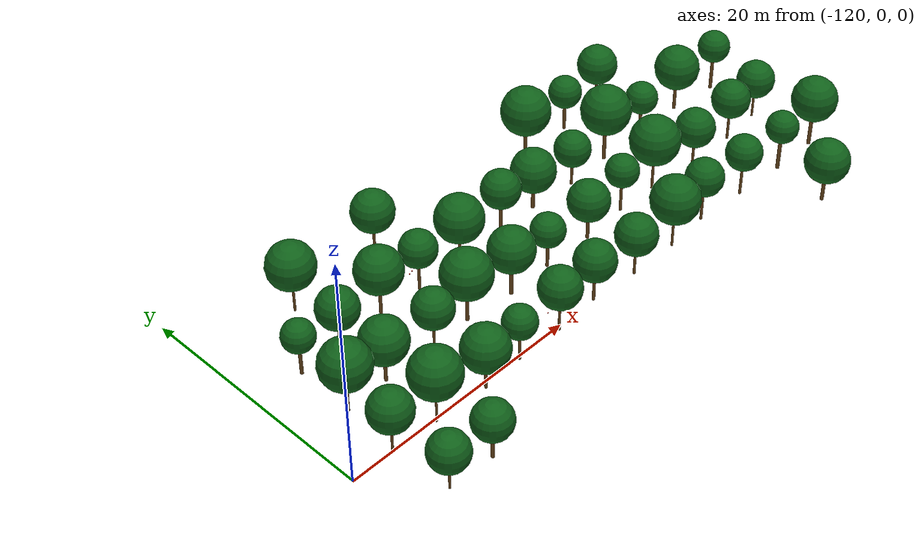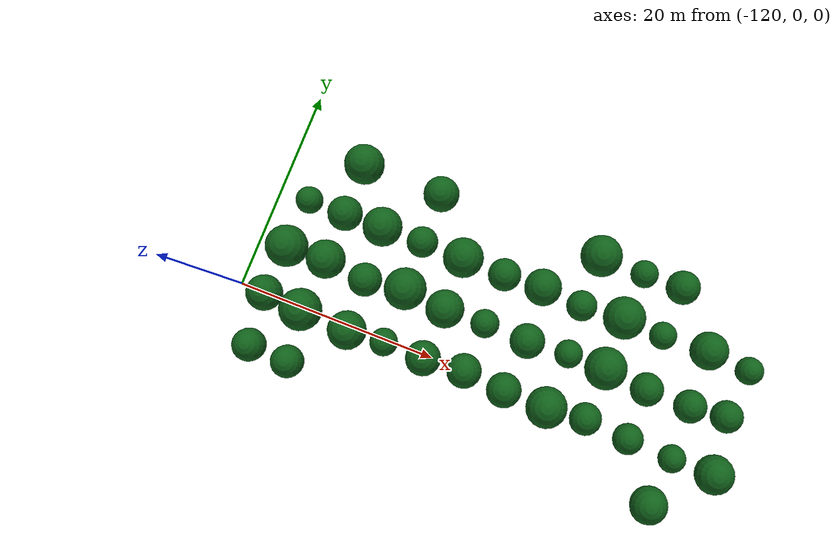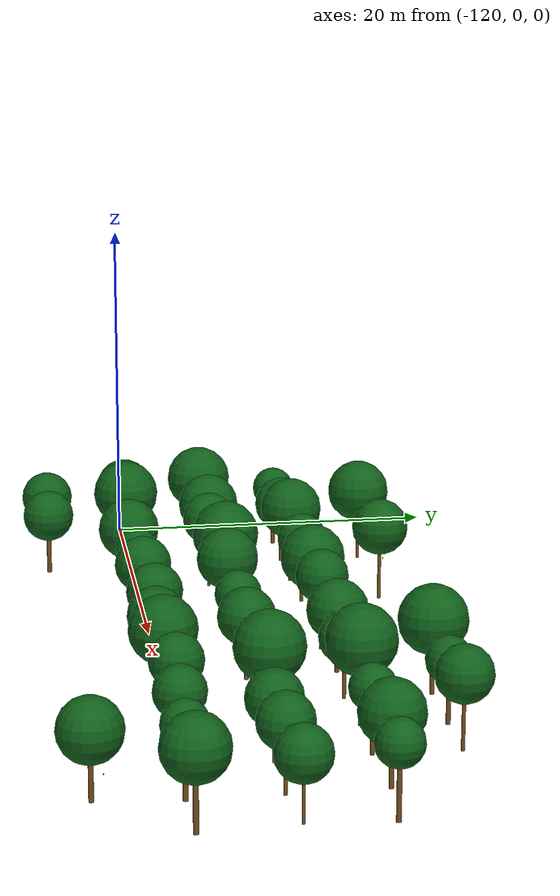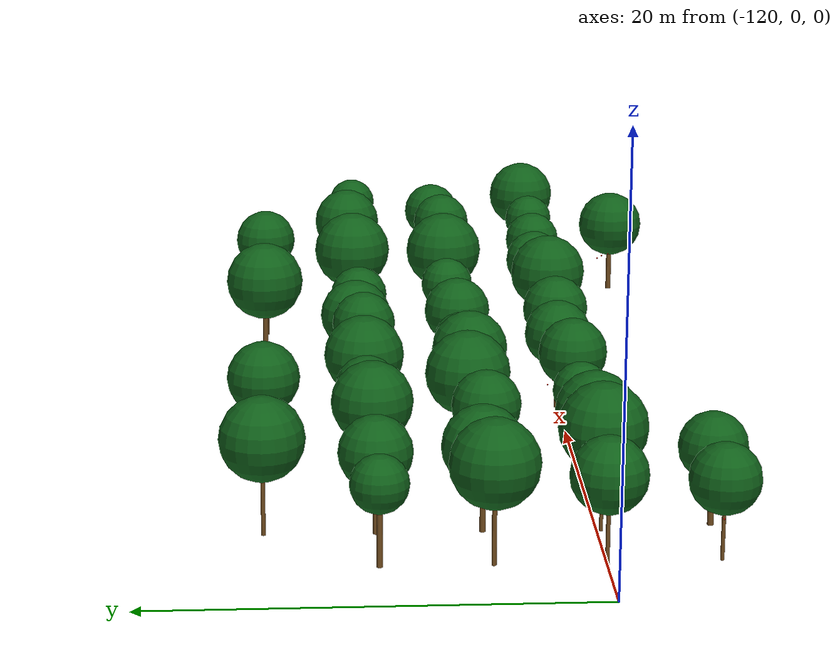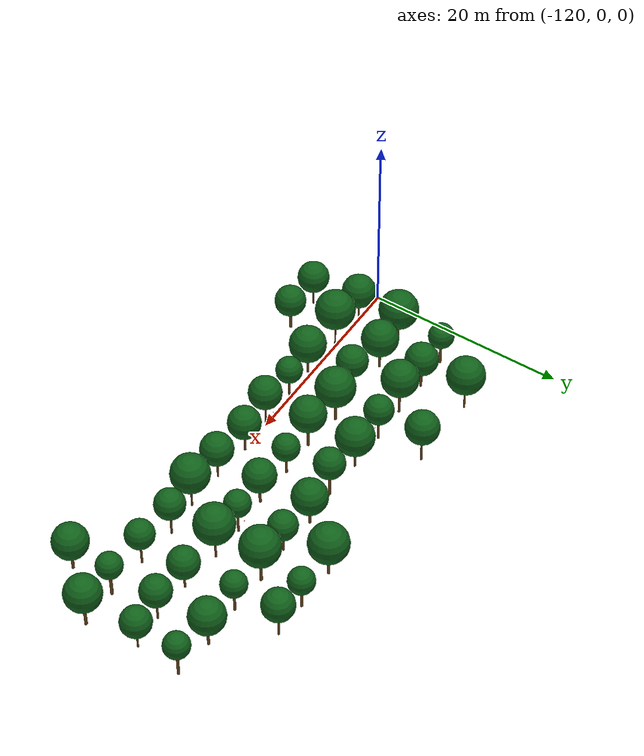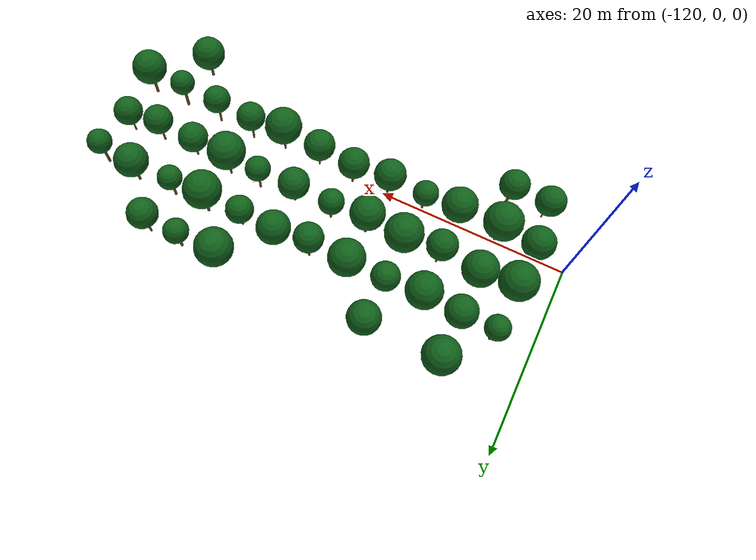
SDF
<sdf version="1.9">
 <world name="cheongsong_orchard">
  <model name="apple_tree_1170">
   <static>true</static>
   <pose>-115.91 -4.96 0 0 0 0</pose>
   <link name="link">
    <collision name="trunk_col">
     <pose>0 0 1.08 0 0 0</pose>
     <geometry><cylinder><radius>0.086</radius><length>2.15</length></cylinder></geometry>
    </collision>
    <visual name="trunk_vis">
     <pose>0 0 1.08 0 0 0</pose>
     <geometry><cylinder><radius>0.086</radius><length>2.15</length></cylinder></geometry>
     <material><ambient>0.35 0.22 0.08 1</ambient><diffuse>0.45 0.30 0.12 1</diffuse></material>
    </visual>
    <collision name="canopy_col">
     <pose>0 0 3.73 0 0 0</pose>
     <geometry><sphere><radius>1.58</radius></sphere></geometry>
    </collision>
    <visual name="canopy_vis">
     <pose>0 0 3.73 0 0 0</pose>
     <geometry><sphere><radius>1.58</radius></sphere></geometry>
     <material><ambient>0.04 0.28 0.06 1</ambient><diffuse>0.06 0.38 0.10 1</diffuse></material>
    </visual>
   </link>
  </model>
  <model name="apple_tree_1171">
   <static>true</static>
   <pose>-112.02 -5.10 0 0 0 0</pose>
   <link name="link">
    <collision name="trunk_col">
     <pose>0 0 1.08 0 0 0</pose>
     <geometry><cylinder><radius>0.143</radius><length>2.15</length></cylinder></geometry>
    </collision>
    <visual name="trunk_vis">
     <pose>0 0 1.08 0 0 0</pose>
     <geometry><cylinder><radius>0.143</radius><length>2.15</length></cylinder></geometry>
     <material><ambient>0.35 0.22 0.08 1</ambient><diffuse>0.45 0.30 0.12 1</diffuse></material>
    </visual>
    <collision name="canopy_col">
     <pose>0 0 3.71 0 0 0</pose>
     <geometry><sphere><radius>1.56</radius></sphere></geometry>
    </collision>
    <visual name="canopy_vis">
     <pose>0 0 3.71 0 0 0</pose>
     <geometry><sphere><radius>1.56</radius></sphere></geometry>
     <material><ambient>0.04 0.28 0.06 1</ambient><diffuse>0.06 0.38 0.10 1</diffuse></material>
    </visual>
   </link>
  </model>
  <model name="apple_tree_1180">
   <static>true</static>
   <pose>-76.38 -5.13 0 0 0 0</pose>
   <link name="link">
    <collision name="trunk_col">
     <pose>0 0 1.04 0 0 0</pose>
     <geometry><cylinder><radius>0.140</radius><length>2.08</length></cylinder></geometry>
    </collision>
    <visual name="trunk_vis">
     <pose>0 0 1.04 0 0 0</pose>
     <geometry><cylinder><radius>0.140</radius><length>2.08</length></cylinder></geometry>
     <material><ambient>0.35 0.22 0.08 1</ambient><diffuse>0.45 0.30 0.12 1</diffuse></material>
    </visual>
    <collision name="canopy_col">
     <pose>0 0 3.86 0 0 0</pose>
     <geometry><sphere><radius>1.77</radius></sphere></geometry>
    </collision>
    <visual name="canopy_vis">
     <pose>0 0 3.86 0 0 0</pose>
     <geometry><sphere><radius>1.77</radius></sphere></geometry>
     <material><ambient>0.04 0.28 0.06 1</ambient><diffuse>0.06 0.38 0.10 1</diffuse></material>
    </visual>
   </link>
  </model>
  <model name="apple_tree_1226">
   <static>true</static>
   <pose>-116.36 0.03 0 0 0 0</pose>
   <link name="link">
    <collision name="trunk_col">
     <pose>0 0 1.23 0 0 0</pose>
     <geometry><cylinder><radius>0.093</radius><length>2.46</length></cylinder></geometry>
    </collision>
    <visual name="trunk_vis">
     <pose>0 0 1.23 0 0 0</pose>
     <geometry><cylinder><radius>0.093</radius><length>2.46</length></cylinder></geometry>
     <material><ambient>0.35 0.22 0.08 1</ambient><diffuse>0.45 0.30 0.12 1</diffuse></material>
    </visual>
    <collision name="canopy_col">
     <pose>0 0 4.16 0 0 0</pose>
     <geometry><sphere><radius>1.70</radius></sphere></geometry>
    </collision>
    <visual name="canopy_vis">
     <pose>0 0 4.16 0 0 0</pose>
     <geometry><sphere><radius>1.70</radius></sphere></geometry>
     <material><ambient>0.04 0.28 0.06 1</ambient><diffuse>0.06 0.38 0.10 1</diffuse></material>
    </visual>
   </link>
  </model>
  <model name="apple_tree_1227">
   <static>true</static>
   <pose>-112.45 -0.19 0 0 0 0</pose>
   <link name="link">
    <collision name="trunk_col">
     <pose>0 0 1.44 0 0 0</pose>
     <geometry><cylinder><radius>0.084</radius><length>2.88</length></cylinder></geometry>
    </collision>
    <visual name="trunk_vis">
     <pose>0 0 1.44 0 0 0</pose>
     <geometry><cylinder><radius>0.084</radius><length>2.88</length></cylinder></geometry>
     <material><ambient>0.35 0.22 0.08 1</ambient><diffuse>0.45 0.30 0.12 1</diffuse></material>
    </visual>
    <collision name="canopy_col">
     <pose>0 0 4.87 0 0 0</pose>
     <geometry><sphere><radius>1.99</radius></sphere></geometry>
    </collision>
    <visual name="canopy_vis">
     <pose>0 0 4.87 0 0 0</pose>
     <geometry><sphere><radius>1.99</radius></sphere></geometry>
     <material><ambient>0.04 0.28 0.06 1</ambient><diffuse>0.06 0.38 0.10 1</diffuse></material>
    </visual>
   </link>
  </model>
  <model name="apple_tree_1228">
   <static>true</static>
   <pose>-107.93 -0.41 0 0 0 0</pose>
   <link name="link">
    <collision name="trunk_col">
     <pose>0 0 1.06 0 0 0</pose>
     <geometry><cylinder><radius>0.118</radius><length>2.12</length></cylinder></geometry>
    </collision>
    <visual name="trunk_vis">
     <pose>0 0 1.06 0 0 0</pose>
     <geometry><cylinder><radius>0.118</radius><length>2.12</length></cylinder></geometry>
     <material><ambient>0.35 0.22 0.08 1</ambient><diffuse>0.45 0.30 0.12 1</diffuse></material>
    </visual>
    <collision name="canopy_col">
     <pose>0 0 3.96 0 0 0</pose>
     <geometry><sphere><radius>1.84</radius></sphere></geometry>
    </collision>
    <visual name="canopy_vis">
     <pose>0 0 3.96 0 0 0</pose>
     <geometry><sphere><radius>1.84</radius></sphere></geometry>
     <material><ambient>0.04 0.28 0.06 1</ambient><diffuse>0.06 0.38 0.10 1</diffuse></material>
    </visual>
   </link>
  </model>
  <model name="apple_tree_1229">
   <static>true</static>
   <pose>-104.37 -0.19 0 0 0 0</pose>
   <link name="link">
    <collision name="trunk_col">
     <pose>0 0 1.18 0 0 0</pose>
     <geometry><cylinder><radius>0.113</radius><length>2.37</length></cylinder></geometry>
    </collision>
    <visual name="trunk_vis">
     <pose>0 0 1.18 0 0 0</pose>
     <geometry><cylinder><radius>0.113</radius><length>2.37</length></cylinder></geometry>
     <material><ambient>0.35 0.22 0.08 1</ambient><diffuse>0.45 0.30 0.12 1</diffuse></material>
    </visual>
    <collision name="canopy_col">
     <pose>0 0 3.70 0 0 0</pose>
     <geometry><sphere><radius>1.33</radius></sphere></geometry>
    </collision>
    <visual name="canopy_vis">
     <pose>0 0 3.70 0 0 0</pose>
     <geometry><sphere><radius>1.33</radius></sphere></geometry>
     <material><ambient>0.04 0.28 0.06 1</ambient><diffuse>0.06 0.38 0.10 1</diffuse></material>
    </visual>
   </link>
  </model>
  <model name="apple_tree_1230">
   <static>true</static>
   <pose>-100.37 -0.24 0 0 0 0</pose>
   <link name="link">
    <collision name="trunk_col">
     <pose>0 0 1.27 0 0 0</pose>
     <geometry><cylinder><radius>0.101</radius><length>2.54</length></cylinder></geometry>
    </collision>
    <visual name="trunk_vis">
     <pose>0 0 1.27 0 0 0</pose>
     <geometry><cylinder><radius>0.101</radius><length>2.54</length></cylinder></geometry>
     <material><ambient>0.35 0.22 0.08 1</ambient><diffuse>0.45 0.30 0.12 1</diffuse></material>
    </visual>
    <collision name="canopy_col">
     <pose>0 0 4.20 0 0 0</pose>
     <geometry><sphere><radius>1.66</radius></sphere></geometry>
    </collision>
    <visual name="canopy_vis">
     <pose>0 0 4.20 0 0 0</pose>
     <geometry><sphere><radius>1.66</radius></sphere></geometry>
     <material><ambient>0.04 0.28 0.06 1</ambient><diffuse>0.06 0.38 0.10 1</diffuse></material>
    </visual>
   </link>
  </model>
  <model name="apple_tree_1231">
   <static>true</static>
   <pose>-96.44 0.05 0 0 0 0</pose>
   <link name="link">
    <collision name="trunk_col">
     <pose>0 0 1.12 0 0 0</pose>
     <geometry><cylinder><radius>0.118</radius><length>2.24</length></cylinder></geometry>
    </collision>
    <visual name="trunk_vis">
     <pose>0 0 1.12 0 0 0</pose>
     <geometry><cylinder><radius>0.118</radius><length>2.24</length></cylinder></geometry>
     <material><ambient>0.35 0.22 0.08 1</ambient><diffuse>0.45 0.30 0.12 1</diffuse></material>
    </visual>
    <collision name="canopy_col">
     <pose>0 0 3.89 0 0 0</pose>
     <geometry><sphere><radius>1.64</radius></sphere></geometry>
    </collision>
    <visual name="canopy_vis">
     <pose>0 0 3.89 0 0 0</pose>
     <geometry><sphere><radius>1.64</radius></sphere></geometry>
     <material><ambient>0.04 0.28 0.06 1</ambient><diffuse>0.06 0.38 0.10 1</diffuse></material>
    </visual>
   </link>
  </model>
  <model name="apple_tree_1232">
   <static>true</static>
   <pose>-92.38 -0.26 0 0 0 0</pose>
   <link name="link">
    <collision name="trunk_col">
     <pose>0 0 1.12 0 0 0</pose>
     <geometry><cylinder><radius>0.100</radius><length>2.25</length></cylinder></geometry>
    </collision>
    <visual name="trunk_vis">
     <pose>0 0 1.12 0 0 0</pose>
     <geometry><cylinder><radius>0.100</radius><length>2.25</length></cylinder></geometry>
     <material><ambient>0.35 0.22 0.08 1</ambient><diffuse>0.45 0.30 0.12 1</diffuse></material>
    </visual>
    <collision name="canopy_col">
     <pose>0 0 3.90 0 0 0</pose>
     <geometry><sphere><radius>1.65</radius></sphere></geometry>
    </collision>
    <visual name="canopy_vis">
     <pose>0 0 3.90 0 0 0</pose>
     <geometry><sphere><radius>1.65</radius></sphere></geometry>
     <material><ambient>0.04 0.28 0.06 1</ambient><diffuse>0.06 0.38 0.10 1</diffuse></material>
    </visual>
   </link>
  </model>
  <model name="apple_tree_1233">
   <static>true</static>
   <pose>-88.20 -0.29 0 0 0 0</pose>
   <link name="link">
    <collision name="trunk_col">
     <pose>0 0 1.32 0 0 0</pose>
     <geometry><cylinder><radius>0.094</radius><length>2.65</length></cylinder></geometry>
    </collision>
    <visual name="trunk_vis">
     <pose>0 0 1.32 0 0 0</pose>
     <geometry><cylinder><radius>0.094</radius><length>2.65</length></cylinder></geometry>
     <material><ambient>0.35 0.22 0.08 1</ambient><diffuse>0.45 0.30 0.12 1</diffuse></material>
    </visual>
    <collision name="canopy_col">
     <pose>0 0 4.58 0 0 0</pose>
     <geometry><sphere><radius>1.93</radius></sphere></geometry>
    </collision>
    <visual name="canopy_vis">
     <pose>0 0 4.58 0 0 0</pose>
     <geometry><sphere><radius>1.93</radius></sphere></geometry>
     <material><ambient>0.04 0.28 0.06 1</ambient><diffuse>0.06 0.38 0.10 1</diffuse></material>
    </visual>
   </link>
  </model>
  <model name="apple_tree_1234">
   <static>true</static>
   <pose>-84.49 0.03 0 0 0 0</pose>
   <link name="link">
    <collision name="trunk_col">
     <pose>0 0 1.33 0 0 0</pose>
     <geometry><cylinder><radius>0.106</radius><length>2.66</length></cylinder></geometry>
    </collision>
    <visual name="trunk_vis">
     <pose>0 0 1.33 0 0 0</pose>
     <geometry><cylinder><radius>0.106</radius><length>2.66</length></cylinder></geometry>
     <material><ambient>0.35 0.22 0.08 1</ambient><diffuse>0.45 0.30 0.12 1</diffuse></material>
    </visual>
    <collision name="canopy_col">
     <pose>0 0 4.19 0 0 0</pose>
     <geometry><sphere><radius>1.52</radius></sphere></geometry>
    </collision>
    <visual name="canopy_vis">
     <pose>0 0 4.19 0 0 0</pose>
     <geometry><sphere><radius>1.52</radius></sphere></geometry>
     <material><ambient>0.04 0.28 0.06 1</ambient><diffuse>0.06 0.38 0.10 1</diffuse></material>
    </visual>
   </link>
  </model>
  <model name="apple_tree_1235">
   <static>true</static>
   <pose>-80.24 -0.25 0 0 0 0</pose>
   <link name="link">
    <collision name="trunk_col">
     <pose>0 0 1.34 0 0 0</pose>
     <geometry><cylinder><radius>0.107</radius><length>2.67</length></cylinder></geometry>
    </collision>
    <visual name="trunk_vis">
     <pose>0 0 1.34 0 0 0</pose>
     <geometry><cylinder><radius>0.107</radius><length>2.67</length></cylinder></geometry>
     <material><ambient>0.35 0.22 0.08 1</ambient><diffuse>0.45 0.30 0.12 1</diffuse></material>
    </visual>
    <collision name="canopy_col">
     <pose>0 0 4.12 0 0 0</pose>
     <geometry><sphere><radius>1.45</radius></sphere></geometry>
    </collision>
    <visual name="canopy_vis">
     <pose>0 0 4.12 0 0 0</pose>
     <geometry><sphere><radius>1.45</radius></sphere></geometry>
     <material><ambient>0.04 0.28 0.06 1</ambient><diffuse>0.06 0.38 0.10 1</diffuse></material>
    </visual>
   </link>
  </model>
  <model name="apple_tree_1236">
   <static>true</static>
   <pose>-75.90 -0.45 0 0 0 0</pose>
   <link name="link">
    <collision name="trunk_col">
     <pose>0 0 1.41 0 0 0</pose>
     <geometry><cylinder><radius>0.149</radius><length>2.81</length></cylinder></geometry>
    </collision>
    <visual name="trunk_vis">
     <pose>0 0 1.41 0 0 0</pose>
     <geometry><cylinder><radius>0.149</radius><length>2.81</length></cylinder></geometry>
     <material><ambient>0.35 0.22 0.08 1</ambient><diffuse>0.45 0.30 0.12 1</diffuse></material>
    </visual>
    <collision name="canopy_col">
     <pose>0 0 4.11 0 0 0</pose>
     <geometry><sphere><radius>1.30</radius></sphere></geometry>
    </collision>
    <visual name="canopy_vis">
     <pose>0 0 4.11 0 0 0</pose>
     <geometry><sphere><radius>1.30</radius></sphere></geometry>
     <material><ambient>0.04 0.28 0.06 1</ambient><diffuse>0.06 0.38 0.10 1</diffuse></material>
    </visual>
   </link>
  </model>
  <model name="apple_tree_1237">
   <static>true</static>
   <pose>-71.93 -0.39 0 0 0 0</pose>
   <link name="link">
    <collision name="trunk_col">
     <pose>0 0 1.35 0 0 0</pose>
     <geometry><cylinder><radius>0.147</radius><length>2.69</length></cylinder></geometry>
    </collision>
    <visual name="trunk_vis">
     <pose>0 0 1.35 0 0 0</pose>
     <geometry><cylinder><radius>0.147</radius><length>2.69</length></cylinder></geometry>
     <material><ambient>0.35 0.22 0.08 1</ambient><diffuse>0.45 0.30 0.12 1</diffuse></material>
    </visual>
    <collision name="canopy_col">
     <pose>0 0 4.51 0 0 0</pose>
     <geometry><sphere><radius>1.82</radius></sphere></geometry>
    </collision>
    <visual name="canopy_vis">
     <pose>0 0 4.51 0 0 0</pose>
     <geometry><sphere><radius>1.82</radius></sphere></geometry>
     <material><ambient>0.04 0.28 0.06 1</ambient><diffuse>0.06 0.38 0.10 1</diffuse></material>
    </visual>
   </link>
  </model>
  <model name="apple_tree_1273">
   <static>true</static>
   <pose>-115.99 4.81 0 0 0 0</pose>
   <link name="link">
    <collision name="trunk_col">
     <pose>0 0 1.32 0 0 0</pose>
     <geometry><cylinder><radius>0.106</radius><length>2.64</length></cylinder></geometry>
    </collision>
    <visual name="trunk_vis">
     <pose>0 0 1.32 0 0 0</pose>
     <geometry><cylinder><radius>0.106</radius><length>2.64</length></cylinder></geometry>
     <material><ambient>0.35 0.22 0.08 1</ambient><diffuse>0.45 0.30 0.12 1</diffuse></material>
    </visual>
    <collision name="canopy_col">
     <pose>0 0 4.62 0 0 0</pose>
     <geometry><sphere><radius>1.98</radius></sphere></geometry>
    </collision>
    <visual name="canopy_vis">
     <pose>0 0 4.62 0 0 0</pose>
     <geometry><sphere><radius>1.98</radius></sphere></geometry>
     <material><ambient>0.04 0.28 0.06 1</ambient><diffuse>0.06 0.38 0.10 1</diffuse></material>
    </visual>
   </link>
  </model>
  <model name="apple_tree_1274">
   <static>true</static>
   <pose>-112.29 5.01 0 0 0 0</pose>
   <link name="link">
    <collision name="trunk_col">
     <pose>0 0 1.08 0 0 0</pose>
     <geometry><cylinder><radius>0.131</radius><length>2.16</length></cylinder></geometry>
    </collision>
    <visual name="trunk_vis">
     <pose>0 0 1.08 0 0 0</pose>
     <geometry><cylinder><radius>0.131</radius><length>2.16</length></cylinder></geometry>
     <material><ambient>0.35 0.22 0.08 1</ambient><diffuse>0.45 0.30 0.12 1</diffuse></material>
    </visual>
    <collision name="canopy_col">
     <pose>0 0 4.00 0 0 0</pose>
     <geometry><sphere><radius>1.85</radius></sphere></geometry>
    </collision>
    <visual name="canopy_vis">
     <pose>0 0 4.00 0 0 0</pose>
     <geometry><sphere><radius>1.85</radius></sphere></geometry>
     <material><ambient>0.04 0.28 0.06 1</ambient><diffuse>0.06 0.38 0.10 1</diffuse></material>
    </visual>
   </link>
  </model>
  <model name="apple_tree_1275">
   <static>true</static>
   <pose>-108.07 4.54 0 0 0 0</pose>
   <link name="link">
    <collision name="trunk_col">
     <pose>0 0 1.40 0 0 0</pose>
     <geometry><cylinder><radius>0.093</radius><length>2.79</length></cylinder></geometry>
    </collision>
    <visual name="trunk_vis">
     <pose>0 0 1.40 0 0 0</pose>
     <geometry><cylinder><radius>0.093</radius><length>2.79</length></cylinder></geometry>
     <material><ambient>0.35 0.22 0.08 1</ambient><diffuse>0.45 0.30 0.12 1</diffuse></material>
    </visual>
    <collision name="canopy_col">
     <pose>0 0 4.38 0 0 0</pose>
     <geometry><sphere><radius>1.59</radius></sphere></geometry>
    </collision>
    <visual name="canopy_vis">
     <pose>0 0 4.38 0 0 0</pose>
     <geometry><sphere><radius>1.59</radius></sphere></geometry>
     <material><ambient>0.04 0.28 0.06 1</ambient><diffuse>0.06 0.38 0.10 1</diffuse></material>
    </visual>
   </link>
  </model>
  <model name="apple_tree_1276">
   <static>true</static>
   <pose>-104.25 5.10 0 0 0 0</pose>
   <link name="link">
    <collision name="trunk_col">
     <pose>0 0 1.30 0 0 0</pose>
     <geometry><cylinder><radius>0.139</radius><length>2.59</length></cylinder></geometry>
    </collision>
    <visual name="trunk_vis">
     <pose>0 0 1.30 0 0 0</pose>
     <geometry><cylinder><radius>0.139</radius><length>2.59</length></cylinder></geometry>
     <material><ambient>0.35 0.22 0.08 1</ambient><diffuse>0.45 0.30 0.12 1</diffuse></material>
    </visual>
    <collision name="canopy_col">
     <pose>0 0 4.59 0 0 0</pose>
     <geometry><sphere><radius>1.99</radius></sphere></geometry>
    </collision>
    <visual name="canopy_vis">
     <pose>0 0 4.59 0 0 0</pose>
     <geometry><sphere><radius>1.99</radius></sphere></geometry>
     <material><ambient>0.04 0.28 0.06 1</ambient><diffuse>0.06 0.38 0.10 1</diffuse></material>
    </visual>
   </link>
  </model>
  <model name="apple_tree_1277">
   <static>true</static>
   <pose>-100.16 4.71 0 0 0 0</pose>
   <link name="link">
    <collision name="trunk_col">
     <pose>0 0 1.31 0 0 0</pose>
     <geometry><cylinder><radius>0.149</radius><length>2.61</length></cylinder></geometry>
    </collision>
    <visual name="trunk_vis">
     <pose>0 0 1.31 0 0 0</pose>
     <geometry><cylinder><radius>0.149</radius><length>2.61</length></cylinder></geometry>
     <material><ambient>0.35 0.22 0.08 1</ambient><diffuse>0.45 0.30 0.12 1</diffuse></material>
    </visual>
    <collision name="canopy_col">
     <pose>0 0 4.42 0 0 0</pose>
     <geometry><sphere><radius>1.81</radius></sphere></geometry>
    </collision>
    <visual name="canopy_vis">
     <pose>0 0 4.42 0 0 0</pose>
     <geometry><sphere><radius>1.81</radius></sphere></geometry>
     <material><ambient>0.04 0.28 0.06 1</ambient><diffuse>0.06 0.38 0.10 1</diffuse></material>
    </visual>
   </link>
  </model>
  <model name="apple_tree_1278">
   <static>true</static>
   <pose>-96.25 4.83 0 0 0 0</pose>
   <link name="link">
    <collision name="trunk_col">
     <pose>0 0 1.11 0 0 0</pose>
     <geometry><cylinder><radius>0.129</radius><length>2.23</length></cylinder></geometry>
    </collision>
    <visual name="trunk_vis">
     <pose>0 0 1.11 0 0 0</pose>
     <geometry><cylinder><radius>0.129</radius><length>2.23</length></cylinder></geometry>
     <material><ambient>0.35 0.22 0.08 1</ambient><diffuse>0.45 0.30 0.12 1</diffuse></material>
    </visual>
    <collision name="canopy_col">
     <pose>0 0 3.58 0 0 0</pose>
     <geometry><sphere><radius>1.36</radius></sphere></geometry>
    </collision>
    <visual name="canopy_vis">
     <pose>0 0 3.58 0 0 0</pose>
     <geometry><sphere><radius>1.36</radius></sphere></geometry>
     <material><ambient>0.04 0.28 0.06 1</ambient><diffuse>0.06 0.38 0.10 1</diffuse></material>
    </visual>
   </link>
  </model>
  <model name="apple_tree_1279">
   <static>true</static>
   <pose>-91.98 4.75 0 0 0 0</pose>
   <link name="link">
    <collision name="trunk_col">
     <pose>0 0 1.04 0 0 0</pose>
     <geometry><cylinder><radius>0.133</radius><length>2.08</length></cylinder></geometry>
    </collision>
    <visual name="trunk_vis">
     <pose>0 0 1.04 0 0 0</pose>
     <geometry><cylinder><radius>0.133</radius><length>2.08</length></cylinder></geometry>
     <material><ambient>0.35 0.22 0.08 1</ambient><diffuse>0.45 0.30 0.12 1</diffuse></material>
    </visual>
    <collision name="canopy_col">
     <pose>0 0 3.74 0 0 0</pose>
     <geometry><sphere><radius>1.66</radius></sphere></geometry>
    </collision>
    <visual name="canopy_vis">
     <pose>0 0 3.74 0 0 0</pose>
     <geometry><sphere><radius>1.66</radius></sphere></geometry>
     <material><ambient>0.04 0.28 0.06 1</ambient><diffuse>0.06 0.38 0.10 1</diffuse></material>
    </visual>
   </link>
  </model>
  <model name="apple_tree_1280">
   <static>true</static>
   <pose>-88.01 5.02 0 0 0 0</pose>
   <link name="link">
    <collision name="trunk_col">
     <pose>0 0 1.32 0 0 0</pose>
     <geometry><cylinder><radius>0.112</radius><length>2.64</length></cylinder></geometry>
    </collision>
    <visual name="trunk_vis">
     <pose>0 0 1.32 0 0 0</pose>
     <geometry><cylinder><radius>0.112</radius><length>2.64</length></cylinder></geometry>
     <material><ambient>0.35 0.22 0.08 1</ambient><diffuse>0.45 0.30 0.12 1</diffuse></material>
    </visual>
    <collision name="canopy_col">
     <pose>0 0 3.97 0 0 0</pose>
     <geometry><sphere><radius>1.33</radius></sphere></geometry>
    </collision>
    <visual name="canopy_vis">
     <pose>0 0 3.97 0 0 0</pose>
     <geometry><sphere><radius>1.33</radius></sphere></geometry>
     <material><ambient>0.04 0.28 0.06 1</ambient><diffuse>0.06 0.38 0.10 1</diffuse></material>
    </visual>
   </link>
  </model>
  <model name="apple_tree_1281">
   <static>true</static>
   <pose>-84.43 4.98 0 0 0 0</pose>
   <link name="link">
    <collision name="trunk_col">
     <pose>0 0 1.39 0 0 0</pose>
     <geometry><cylinder><radius>0.106</radius><length>2.79</length></cylinder></geometry>
    </collision>
    <visual name="trunk_vis">
     <pose>0 0 1.39 0 0 0</pose>
     <geometry><cylinder><radius>0.106</radius><length>2.79</length></cylinder></geometry>
     <material><ambient>0.35 0.22 0.08 1</ambient><diffuse>0.45 0.30 0.12 1</diffuse></material>
    </visual>
    <collision name="canopy_col">
     <pose>0 0 4.77 0 0 0</pose>
     <geometry><sphere><radius>1.99</radius></sphere></geometry>
    </collision>
    <visual name="canopy_vis">
     <pose>0 0 4.77 0 0 0</pose>
     <geometry><sphere><radius>1.99</radius></sphere></geometry>
     <material><ambient>0.04 0.28 0.06 1</ambient><diffuse>0.06 0.38 0.10 1</diffuse></material>
    </visual>
   </link>
  </model>
  <model name="apple_tree_1282">
   <static>true</static>
   <pose>-80.08 4.61 0 0 0 0</pose>
   <link name="link">
    <collision name="trunk_col">
     <pose>0 0 1.00 0 0 0</pose>
     <geometry><cylinder><radius>0.105</radius><length>2.00</length></cylinder></geometry>
    </collision>
    <visual name="trunk_vis">
     <pose>0 0 1.00 0 0 0</pose>
     <geometry><cylinder><radius>0.105</radius><length>2.00</length></cylinder></geometry>
     <material><ambient>0.35 0.22 0.08 1</ambient><diffuse>0.45 0.30 0.12 1</diffuse></material>
    </visual>
    <collision name="canopy_col">
     <pose>0 0 3.58 0 0 0</pose>
     <geometry><sphere><radius>1.58</radius></sphere></geometry>
    </collision>
    <visual name="canopy_vis">
     <pose>0 0 3.58 0 0 0</pose>
     <geometry><sphere><radius>1.58</radius></sphere></geometry>
     <material><ambient>0.04 0.28 0.06 1</ambient><diffuse>0.06 0.38 0.10 1</diffuse></material>
    </visual>
   </link>
  </model>
  <model name="apple_tree_1283">
   <static>true</static>
   <pose>-75.92 4.58 0 0 0 0</pose>
   <link name="link">
    <collision name="trunk_col">
     <pose>0 0 1.23 0 0 0</pose>
     <geometry><cylinder><radius>0.104</radius><length>2.45</length></cylinder></geometry>
    </collision>
    <visual name="trunk_vis">
     <pose>0 0 1.23 0 0 0</pose>
     <geometry><cylinder><radius>0.104</radius><length>2.45</length></cylinder></geometry>
     <material><ambient>0.35 0.22 0.08 1</ambient><diffuse>0.45 0.30 0.12 1</diffuse></material>
    </visual>
    <collision name="canopy_col">
     <pose>0 0 4.00 0 0 0</pose>
     <geometry><sphere><radius>1.55</radius></sphere></geometry>
    </collision>
    <visual name="canopy_vis">
     <pose>0 0 4.00 0 0 0</pose>
     <geometry><sphere><radius>1.55</radius></sphere></geometry>
     <material><ambient>0.04 0.28 0.06 1</ambient><diffuse>0.06 0.38 0.10 1</diffuse></material>
    </visual>
   </link>
  </model>
  <model name="apple_tree_1284">
   <static>true</static>
   <pose>-72.40 4.94 0 0 0 0</pose>
   <link name="link">
    <collision name="trunk_col">
     <pose>0 0 1.09 0 0 0</pose>
     <geometry><cylinder><radius>0.088</radius><length>2.19</length></cylinder></geometry>
    </collision>
    <visual name="trunk_vis">
     <pose>0 0 1.09 0 0 0</pose>
     <geometry><cylinder><radius>0.088</radius><length>2.19</length></cylinder></geometry>
     <material><ambient>0.35 0.22 0.08 1</ambient><diffuse>0.45 0.30 0.12 1</diffuse></material>
    </visual>
    <collision name="canopy_col">
     <pose>0 0 3.71 0 0 0</pose>
     <geometry><sphere><radius>1.52</radius></sphere></geometry>
    </collision>
    <visual name="canopy_vis">
     <pose>0 0 3.71 0 0 0</pose>
     <geometry><sphere><radius>1.52</radius></sphere></geometry>
     <material><ambient>0.04 0.28 0.06 1</ambient><diffuse>0.06 0.38 0.10 1</diffuse></material>
    </visual>
   </link>
  </model>
  <model name="apple_tree_1317">
   <static>true</static>
   <pose>-115.94 9.66 0 0 0 0</pose>
   <link name="link">
    <collision name="trunk_col">
     <pose>0 0 1.24 0 0 0</pose>
     <geometry><cylinder><radius>0.134</radius><length>2.48</length></cylinder></geometry>
    </collision>
    <visual name="trunk_vis">
     <pose>0 0 1.24 0 0 0</pose>
     <geometry><cylinder><radius>0.134</radius><length>2.48</length></cylinder></geometry>
     <material><ambient>0.35 0.22 0.08 1</ambient><diffuse>0.45 0.30 0.12 1</diffuse></material>
    </visual>
    <collision name="canopy_col">
     <pose>0 0 3.77 0 0 0</pose>
     <geometry><sphere><radius>1.29</radius></sphere></geometry>
    </collision>
    <visual name="canopy_vis">
     <pose>0 0 3.77 0 0 0</pose>
     <geometry><sphere><radius>1.29</radius></sphere></geometry>
     <material><ambient>0.04 0.28 0.06 1</ambient><diffuse>0.06 0.38 0.10 1</diffuse></material>
    </visual>
   </link>
  </model>
  <model name="apple_tree_1318">
   <static>true</static>
   <pose>-112.31 9.69 0 0 0 0</pose>
   <link name="link">
    <collision name="trunk_col">
     <pose>0 0 1.08 0 0 0</pose>
     <geometry><cylinder><radius>0.132</radius><length>2.16</length></cylinder></geometry>
    </collision>
    <visual name="trunk_vis">
     <pose>0 0 1.08 0 0 0</pose>
     <geometry><cylinder><radius>0.132</radius><length>2.16</length></cylinder></geometry>
     <material><ambient>0.35 0.22 0.08 1</ambient><diffuse>0.45 0.30 0.12 1</diffuse></material>
    </visual>
    <collision name="canopy_col">
     <pose>0 0 3.81 0 0 0</pose>
     <geometry><sphere><radius>1.66</radius></sphere></geometry>
    </collision>
    <visual name="canopy_vis">
     <pose>0 0 3.81 0 0 0</pose>
     <geometry><sphere><radius>1.66</radius></sphere></geometry>
     <material><ambient>0.04 0.28 0.06 1</ambient><diffuse>0.06 0.38 0.10 1</diffuse></material>
    </visual>
   </link>
  </model>
  <model name="apple_tree_1319">
   <static>true</static>
   <pose>-108.36 9.69 0 0 0 0</pose>
   <link name="link">
    <collision name="trunk_col">
     <pose>0 0 1.43 0 0 0</pose>
     <geometry><cylinder><radius>0.125</radius><length>2.86</length></cylinder></geometry>
    </collision>
    <visual name="trunk_vis">
     <pose>0 0 1.43 0 0 0</pose>
     <geometry><cylinder><radius>0.125</radius><length>2.86</length></cylinder></geometry>
     <material><ambient>0.35 0.22 0.08 1</ambient><diffuse>0.45 0.30 0.12 1</diffuse></material>
    </visual>
    <collision name="canopy_col">
     <pose>0 0 4.72 0 0 0</pose>
     <geometry><sphere><radius>1.86</radius></sphere></geometry>
    </collision>
    <visual name="canopy_vis">
     <pose>0 0 4.72 0 0 0</pose>
     <geometry><sphere><radius>1.86</radius></sphere></geometry>
     <material><ambient>0.04 0.28 0.06 1</ambient><diffuse>0.06 0.38 0.10 1</diffuse></material>
    </visual>
   </link>
  </model>
  <model name="apple_tree_1320">
   <static>true</static>
   <pose>-104.47 9.79 0 0 0 0</pose>
   <link name="link">
    <collision name="trunk_col">
     <pose>0 0 1.28 0 0 0</pose>
     <geometry><cylinder><radius>0.114</radius><length>2.55</length></cylinder></geometry>
    </collision>
    <visual name="trunk_vis">
     <pose>0 0 1.28 0 0 0</pose>
     <geometry><cylinder><radius>0.114</radius><length>2.55</length></cylinder></geometry>
     <material><ambient>0.35 0.22 0.08 1</ambient><diffuse>0.45 0.30 0.12 1</diffuse></material>
    </visual>
    <collision name="canopy_col">
     <pose>0 0 4.04 0 0 0</pose>
     <geometry><sphere><radius>1.48</radius></sphere></geometry>
    </collision>
    <visual name="canopy_vis">
     <pose>0 0 4.04 0 0 0</pose>
     <geometry><sphere><radius>1.48</radius></sphere></geometry>
     <material><ambient>0.04 0.28 0.06 1</ambient><diffuse>0.06 0.38 0.10 1</diffuse></material>
    </visual>
   </link>
  </model>
  <model name="apple_tree_1321">
   <static>true</static>
   <pose>-100.34 9.79 0 0 0 0</pose>
   <link name="link">
    <collision name="trunk_col">
     <pose>0 0 1.16 0 0 0</pose>
     <geometry><cylinder><radius>0.106</radius><length>2.31</length></cylinder></geometry>
    </collision>
    <visual name="trunk_vis">
     <pose>0 0 1.16 0 0 0</pose>
     <geometry><cylinder><radius>0.106</radius><length>2.31</length></cylinder></geometry>
     <material><ambient>0.35 0.22 0.08 1</ambient><diffuse>0.45 0.30 0.12 1</diffuse></material>
    </visual>
    <collision name="canopy_col">
     <pose>0 0 4.23 0 0 0</pose>
     <geometry><sphere><radius>1.91</radius></sphere></geometry>
    </collision>
    <visual name="canopy_vis">
     <pose>0 0 4.23 0 0 0</pose>
     <geometry><sphere><radius>1.91</radius></sphere></geometry>
     <material><ambient>0.04 0.28 0.06 1</ambient><diffuse>0.06 0.38 0.10 1</diffuse></material>
    </visual>
   </link>
  </model>
  <model name="apple_tree_1322">
   <static>true</static>
   <pose>-96.17 9.67 0 0 0 0</pose>
   <link name="link">
    <collision name="trunk_col">
     <pose>0 0 1.46 0 0 0</pose>
     <geometry><cylinder><radius>0.126</radius><length>2.91</length></cylinder></geometry>
    </collision>
    <visual name="trunk_vis">
     <pose>0 0 1.46 0 0 0</pose>
     <geometry><cylinder><radius>0.126</radius><length>2.91</length></cylinder></geometry>
     <material><ambient>0.35 0.22 0.08 1</ambient><diffuse>0.45 0.30 0.12 1</diffuse></material>
    </visual>
    <collision name="canopy_col">
     <pose>0 0 4.47 0 0 0</pose>
     <geometry><sphere><radius>1.55</radius></sphere></geometry>
    </collision>
    <visual name="canopy_vis">
     <pose>0 0 4.47 0 0 0</pose>
     <geometry><sphere><radius>1.55</radius></sphere></geometry>
     <material><ambient>0.04 0.28 0.06 1</ambient><diffuse>0.06 0.38 0.10 1</diffuse></material>
    </visual>
   </link>
  </model>
  <model name="apple_tree_1323">
   <static>true</static>
   <pose>-92.41 9.96 0 0 0 0</pose>
   <link name="link">
    <collision name="trunk_col">
     <pose>0 0 0.98 0 0 0</pose>
     <geometry><cylinder><radius>0.142</radius><length>1.96</length></cylinder></geometry>
    </collision>
    <visual name="trunk_vis">
     <pose>0 0 0.98 0 0 0</pose>
     <geometry><cylinder><radius>0.142</radius><length>1.96</length></cylinder></geometry>
     <material><ambient>0.35 0.22 0.08 1</ambient><diffuse>0.45 0.30 0.12 1</diffuse></material>
    </visual>
    <collision name="canopy_col">
     <pose>0 0 3.72 0 0 0</pose>
     <geometry><sphere><radius>1.77</radius></sphere></geometry>
    </collision>
    <visual name="canopy_vis">
     <pose>0 0 3.72 0 0 0</pose>
     <geometry><sphere><radius>1.77</radius></sphere></geometry>
     <material><ambient>0.04 0.28 0.06 1</ambient><diffuse>0.06 0.38 0.10 1</diffuse></material>
    </visual>
   </link>
  </model>
  <model name="apple_tree_1324">
   <static>true</static>
   <pose>-88.42 9.68 0 0 0 0</pose>
   <link name="link">
    <collision name="trunk_col">
     <pose>0 0 1.04 0 0 0</pose>
     <geometry><cylinder><radius>0.109</radius><length>2.08</length></cylinder></geometry>
    </collision>
    <visual name="trunk_vis">
     <pose>0 0 1.04 0 0 0</pose>
     <geometry><cylinder><radius>0.109</radius><length>2.08</length></cylinder></geometry>
     <material><ambient>0.35 0.22 0.08 1</ambient><diffuse>0.45 0.30 0.12 1</diffuse></material>
    </visual>
    <collision name="canopy_col">
     <pose>0 0 3.55 0 0 0</pose>
     <geometry><sphere><radius>1.46</radius></sphere></geometry>
    </collision>
    <visual name="canopy_vis">
     <pose>0 0 3.55 0 0 0</pose>
     <geometry><sphere><radius>1.46</radius></sphere></geometry>
     <material><ambient>0.04 0.28 0.06 1</ambient><diffuse>0.06 0.38 0.10 1</diffuse></material>
    </visual>
   </link>
  </model>
  <model name="apple_tree_1325">
   <static>true</static>
   <pose>-84.47 9.91 0 0 0 0</pose>
   <link name="link">
    <collision name="trunk_col">
     <pose>0 0 1.44 0 0 0</pose>
     <geometry><cylinder><radius>0.147</radius><length>2.87</length></cylinder></geometry>
    </collision>
    <visual name="trunk_vis">
     <pose>0 0 1.44 0 0 0</pose>
     <geometry><cylinder><radius>0.147</radius><length>2.87</length></cylinder></geometry>
     <material><ambient>0.35 0.22 0.08 1</ambient><diffuse>0.45 0.30 0.12 1</diffuse></material>
    </visual>
    <collision name="canopy_col">
     <pose>0 0 4.86 0 0 0</pose>
     <geometry><sphere><radius>1.99</radius></sphere></geometry>
    </collision>
    <visual name="canopy_vis">
     <pose>0 0 4.86 0 0 0</pose>
     <geometry><sphere><radius>1.99</radius></sphere></geometry>
     <material><ambient>0.04 0.28 0.06 1</ambient><diffuse>0.06 0.38 0.10 1</diffuse></material>
    </visual>
   </link>
  </model>
  <model name="apple_tree_1326">
   <static>true</static>
   <pose>-80.42 9.80 0 0 0 0</pose>
   <link name="link">
    <collision name="trunk_col">
     <pose>0 0 1.22 0 0 0</pose>
     <geometry><cylinder><radius>0.128</radius><length>2.43</length></cylinder></geometry>
    </collision>
    <visual name="trunk_vis">
     <pose>0 0 1.22 0 0 0</pose>
     <geometry><cylinder><radius>0.128</radius><length>2.43</length></cylinder></geometry>
     <material><ambient>0.35 0.22 0.08 1</ambient><diffuse>0.45 0.30 0.12 1</diffuse></material>
    </visual>
    <collision name="canopy_col">
     <pose>0 0 3.74 0 0 0</pose>
     <geometry><sphere><radius>1.30</radius></sphere></geometry>
    </collision>
    <visual name="canopy_vis">
     <pose>0 0 3.74 0 0 0</pose>
     <geometry><sphere><radius>1.30</radius></sphere></geometry>
     <material><ambient>0.04 0.28 0.06 1</ambient><diffuse>0.06 0.38 0.10 1</diffuse></material>
    </visual>
   </link>
  </model>
  <model name="apple_tree_1327">
   <static>true</static>
   <pose>-76.04 9.98 0 0 0 0</pose>
   <link name="link">
    <collision name="trunk_col">
     <pose>0 0 1.17 0 0 0</pose>
     <geometry><cylinder><radius>0.131</radius><length>2.34</length></cylinder></geometry>
    </collision>
    <visual name="trunk_vis">
     <pose>0 0 1.17 0 0 0</pose>
     <geometry><cylinder><radius>0.131</radius><length>2.34</length></cylinder></geometry>
     <material><ambient>0.35 0.22 0.08 1</ambient><diffuse>0.45 0.30 0.12 1</diffuse></material>
    </visual>
    <collision name="canopy_col">
     <pose>0 0 4.13 0 0 0</pose>
     <geometry><sphere><radius>1.79</radius></sphere></geometry>
    </collision>
    <visual name="canopy_vis">
     <pose>0 0 4.13 0 0 0</pose>
     <geometry><sphere><radius>1.79</radius></sphere></geometry>
     <material><ambient>0.04 0.28 0.06 1</ambient><diffuse>0.06 0.38 0.10 1</diffuse></material>
    </visual>
   </link>
  </model>
  <model name="apple_tree_1328">
   <static>true</static>
   <pose>-71.99 9.59 0 0 0 0</pose>
   <link name="link">
    <collision name="trunk_col">
     <pose>0 0 1.44 0 0 0</pose>
     <geometry><cylinder><radius>0.135</radius><length>2.88</length></cylinder></geometry>
    </collision>
    <visual name="trunk_vis">
     <pose>0 0 1.44 0 0 0</pose>
     <geometry><cylinder><radius>0.135</radius><length>2.88</length></cylinder></geometry>
     <material><ambient>0.35 0.22 0.08 1</ambient><diffuse>0.45 0.30 0.12 1</diffuse></material>
    </visual>
    <collision name="canopy_col">
     <pose>0 0 4.18 0 0 0</pose>
     <geometry><sphere><radius>1.30</radius></sphere></geometry>
    </collision>
    <visual name="canopy_vis">
     <pose>0 0 4.18 0 0 0</pose>
     <geometry><sphere><radius>1.30</radius></sphere></geometry>
     <material><ambient>0.04 0.28 0.06 1</ambient><diffuse>0.06 0.38 0.10 1</diffuse></material>
    </visual>
   </link>
  </model>
  <model name="apple_tree_1368">
   <static>true</static>
   <pose>-112.23 14.60 0 0 0 0</pose>
   <link name="link">
    <collision name="trunk_col">
     <pose>0 0 1.29 0 0 0</pose>
     <geometry><cylinder><radius>0.096</radius><length>2.59</length></cylinder></geometry>
    </collision>
    <visual name="trunk_vis">
     <pose>0 0 1.29 0 0 0</pose>
     <geometry><cylinder><radius>0.096</radius><length>2.59</length></cylinder></geometry>
     <material><ambient>0.35 0.22 0.08 1</ambient><diffuse>0.45 0.30 0.12 1</diffuse></material>
    </visual>
    <collision name="canopy_col">
     <pose>0 0 4.49 0 0 0</pose>
     <geometry><sphere><radius>1.90</radius></sphere></geometry>
    </collision>
    <visual name="canopy_vis">
     <pose>0 0 4.49 0 0 0</pose>
     <geometry><sphere><radius>1.90</radius></sphere></geometry>
     <material><ambient>0.04 0.28 0.06 1</ambient><diffuse>0.06 0.38 0.10 1</diffuse></material>
    </visual>
   </link>
  </model>
  <model name="apple_tree_1370">
   <static>true</static>
   <pose>-104.42 14.57 0 0 0 0</pose>
   <link name="link">
    <collision name="trunk_col">
     <pose>0 0 1.44 0 0 0</pose>
     <geometry><cylinder><radius>0.105</radius><length>2.88</length></cylinder></geometry>
    </collision>
    <visual name="trunk_vis">
     <pose>0 0 1.44 0 0 0</pose>
     <geometry><cylinder><radius>0.105</radius><length>2.88</length></cylinder></geometry>
     <material><ambient>0.35 0.22 0.08 1</ambient><diffuse>0.45 0.30 0.12 1</diffuse></material>
    </visual>
    <collision name="canopy_col">
     <pose>0 0 4.57 0 0 0</pose>
     <geometry><sphere><radius>1.69</radius></sphere></geometry>
    </collision>
    <visual name="canopy_vis">
     <pose>0 0 4.57 0 0 0</pose>
     <geometry><sphere><radius>1.69</radius></sphere></geometry>
     <material><ambient>0.04 0.28 0.06 1</ambient><diffuse>0.06 0.38 0.10 1</diffuse></material>
    </visual>
   </link>
  </model>
  <model name="apple_tree_1374">
   <static>true</static>
   <pose>-88.40 14.60 0 0 0 0</pose>
   <link name="link">
    <collision name="trunk_col">
     <pose>0 0 1.19 0 0 0</pose>
     <geometry><cylinder><radius>0.136</radius><length>2.39</length></cylinder></geometry>
    </collision>
    <visual name="trunk_vis">
     <pose>0 0 1.19 0 0 0</pose>
     <geometry><cylinder><radius>0.136</radius><length>2.39</length></cylinder></geometry>
     <material><ambient>0.35 0.22 0.08 1</ambient><diffuse>0.45 0.30 0.12 1</diffuse></material>
    </visual>
    <collision name="canopy_col">
     <pose>0 0 4.37 0 0 0</pose>
     <geometry><sphere><radius>1.98</radius></sphere></geometry>
    </collision>
    <visual name="canopy_vis">
     <pose>0 0 4.37 0 0 0</pose>
     <geometry><sphere><radius>1.98</radius></sphere></geometry>
     <material><ambient>0.04 0.28 0.06 1</ambient><diffuse>0.06 0.38 0.10 1</diffuse></material>
    </visual>
   </link>
  </model>
  <model name="apple_tree_1375">
   <static>true</static>
   <pose>-84.00 14.58 0 0 0 0</pose>
   <link name="link">
    <collision name="trunk_col">
     <pose>0 0 1.18 0 0 0</pose>
     <geometry><cylinder><radius>0.131</radius><length>2.37</length></cylinder></geometry>
    </collision>
    <visual name="trunk_vis">
     <pose>0 0 1.18 0 0 0</pose>
     <geometry><cylinder><radius>0.131</radius><length>2.37</length></cylinder></geometry>
     <material><ambient>0.35 0.22 0.08 1</ambient><diffuse>0.45 0.30 0.12 1</diffuse></material>
    </visual>
    <collision name="canopy_col">
     <pose>0 0 3.68 0 0 0</pose>
     <geometry><sphere><radius>1.32</radius></sphere></geometry>
    </collision>
    <visual name="canopy_vis">
     <pose>0 0 3.68 0 0 0</pose>
     <geometry><sphere><radius>1.32</radius></sphere></geometry>
     <material><ambient>0.04 0.28 0.06 1</ambient><diffuse>0.06 0.38 0.10 1</diffuse></material>
    </visual>
   </link>
  </model>
  <model name="apple_tree_1376">
   <static>true</static>
   <pose>-80.30 14.59 0 0 0 0</pose>
   <link name="link">
    <collision name="trunk_col">
     <pose>0 0 1.35 0 0 0</pose>
     <geometry><cylinder><radius>0.105</radius><length>2.70</length></cylinder></geometry>
    </collision>
    <visual name="trunk_vis">
     <pose>0 0 1.35 0 0 0</pose>
     <geometry><cylinder><radius>0.105</radius><length>2.70</length></cylinder></geometry>
     <material><ambient>0.35 0.22 0.08 1</ambient><diffuse>0.45 0.30 0.12 1</diffuse></material>
    </visual>
    <collision name="canopy_col">
     <pose>0 0 4.29 0 0 0</pose>
     <geometry><sphere><radius>1.60</radius></sphere></geometry>
    </collision>
    <visual name="canopy_vis">
     <pose>0 0 4.29 0 0 0</pose>
     <geometry><sphere><radius>1.60</radius></sphere></geometry>
     <material><ambient>0.04 0.28 0.06 1</ambient><diffuse>0.06 0.38 0.10 1</diffuse></material>
    </visual>
   </link>
  </model>
  <model name="apple_1170_2">
   <static>true</static>
   <pose>-116.38 -5.01 2.31 0 0 0</pose>
   <link name="link">
    <visual name="visual">
     <geometry><sphere><radius>0.04</radius></sphere></geometry>
     <material><ambient>0.7 0.05 0.02 1</ambient><diffuse>0.9 0.10 0.05 1</diffuse></material>
    </visual>
   </link>
  </model>
  <model name="apple_1170_3">
   <static>true</static>
   <pose>-116.66 -5.08 2.58 0 0 0</pose>
   <link name="link">
    <visual name="visual">
     <geometry><sphere><radius>0.04</radius></sphere></geometry>
     <material><ambient>0.7 0.05 0.02 1</ambient><diffuse>0.9 0.10 0.05 1</diffuse></material>
    </visual>
   </link>
  </model>
  <model name="apple_1170_4">
   <static>true</static>
   <pose>-116.76 -4.82 2.23 0 0 0</pose>
   <link name="link">
    <visual name="visual">
     <geometry><sphere><radius>0.04</radius></sphere></geometry>
     <material><ambient>0.7 0.05 0.02 1</ambient><diffuse>0.9 0.10 0.05 1</diffuse></material>
    </visual>
   </link>
  </model>
  <model name="apple_1180_2">
   <static>true</static>
   <pose>-77.16 -4.60 2.19 0 0 0</pose>
   <link name="link">
    <visual name="visual">
     <geometry><sphere><radius>0.04</radius></sphere></geometry>
     <material><ambient>0.7 0.05 0.02 1</ambient><diffuse>0.9 0.10 0.05 1</diffuse></material>
    </visual>
   </link>
  </model>
  <model name="apple_1180_3">
   <static>true</static>
   <pose>-77.23 -4.97 2.32 0 0 0</pose>
   <link name="link">
    <visual name="visual">
     <geometry><sphere><radius>0.04</radius></sphere></geometry>
     <material><ambient>0.7 0.05 0.02 1</ambient><diffuse>0.9 0.10 0.05 1</diffuse></material>
    </visual>
   </link>
  </model>
  <model name="apple_1180_4">
   <static>true</static>
   <pose>-75.93 -4.53 1.66 0 0 0</pose>
   <link name="link">
    <visual name="visual">
     <geometry><sphere><radius>0.04</radius></sphere></geometry>
     <material><ambient>0.7 0.05 0.02 1</ambient><diffuse>0.9 0.10 0.05 1</diffuse></material>
    </visual>
   </link>
  </model>
  <model name="apple_1230_0">
   <static>true</static>
   <pose>-100.01 0.90 2.44 0 0 0</pose>
   <link name="link">
    <visual name="visual">
     <geometry><sphere><radius>0.04</radius></sphere></geometry>
     <material><ambient>0.7 0.05 0.02 1</ambient><diffuse>0.9 0.10 0.05 1</diffuse></material>
    </visual>
   </link>
  </model>
  <model name="apple_1230_1">
   <static>true</static>
   <pose>-99.73 -0.44 2.32 0 0 0</pose>
   <link name="link">
    <visual name="visual">
     <geometry><sphere><radius>0.04</radius></sphere></geometry>
     <material><ambient>0.7 0.05 0.02 1</ambient><diffuse>0.9 0.10 0.05 1</diffuse></material>
    </visual>
   </link>
  </model>
  <model name="apple_1230_2">
   <static>true</static>
   <pose>-101.09 -0.10 2.58 0 0 0</pose>
   <link name="link">
    <visual name="visual">
     <geometry><sphere><radius>0.04</radius></sphere></geometry>
     <material><ambient>0.7 0.05 0.02 1</ambient><diffuse>0.9 0.10 0.05 1</diffuse></material>
    </visual>
   </link>
  </model>
  <model name="apple_1230_3">
   <static>true</static>
   <pose>-100.79 -0.05 2.99 0 0 0</pose>
   <link name="link">
    <visual name="visual">
     <geometry><sphere><radius>0.04</radius></sphere></geometry>
     <material><ambient>0.7 0.05 0.02 1</ambient><diffuse>0.9 0.10 0.05 1</diffuse></material>
    </visual>
   </link>
  </model>
  <model name="apple_1230_4">
   <static>true</static>
   <pose>-101.45 -0.11 2.37 0 0 0</pose>
   <link name="link">
    <visual name="visual">
     <geometry><sphere><radius>0.04</radius></sphere></geometry>
     <material><ambient>0.7 0.05 0.02 1</ambient><diffuse>0.9 0.10 0.05 1</diffuse></material>
    </visual>
   </link>
  </model>
  <model name="apple_1280_0">
   <static>true</static>
   <pose>-88.63 5.26 2.95 0 0 0</pose>
   <link name="link">
    <visual name="visual">
     <geometry><sphere><radius>0.04</radius></sphere></geometry>
     <material><ambient>0.7 0.05 0.02 1</ambient><diffuse>0.9 0.10 0.05 1</diffuse></material>
    </visual>
   </link>
  </model>
  <model name="apple_1280_1">
   <static>true</static>
   <pose>-87.78 5.91 2.29 0 0 0</pose>
   <link name="link">
    <visual name="visual">
     <geometry><sphere><radius>0.04</radius></sphere></geometry>
     <material><ambient>0.7 0.05 0.02 1</ambient><diffuse>0.9 0.10 0.05 1</diffuse></material>
    </visual>
   </link>
  </model>
  <model name="apple_1280_2">
   <static>true</static>
   <pose>-88.34 4.55 2.91 0 0 0</pose>
   <link name="link">
    <visual name="visual">
     <geometry><sphere><radius>0.04</radius></sphere></geometry>
     <material><ambient>0.7 0.05 0.02 1</ambient><diffuse>0.9 0.10 0.05 1</diffuse></material>
    </visual>
   </link>
  </model>
  <model name="apple_1320_0">
   <static>true</static>
   <pose>-105.02 9.93 2.07 0 0 0</pose>
   <link name="link">
    <visual name="visual">
     <geometry><sphere><radius>0.04</radius></sphere></geometry>
     <material><ambient>0.7 0.05 0.02 1</ambient><diffuse>0.9 0.10 0.05 1</diffuse></material>
    </visual>
   </link>
  </model>
  <model name="apple_1320_1">
   <static>true</static>
   <pose>-105.02 10.55 2.38 0 0 0</pose>
   <link name="link">
    <visual name="visual">
     <geometry><sphere><radius>0.04</radius></sphere></geometry>
     <material><ambient>0.7 0.05 0.02 1</ambient><diffuse>0.9 0.10 0.05 1</diffuse></material>
    </visual>
   </link>
  </model>
  <model name="apple_1320_2">
   <static>true</static>
   <pose>-103.79 9.83 2.16 0 0 0</pose>
   <link name="link">
    <visual name="visual">
     <geometry><sphere><radius>0.04</radius></sphere></geometry>
     <material><ambient>0.7 0.05 0.02 1</ambient><diffuse>0.9 0.10 0.05 1</diffuse></material>
    </visual>
   </link>
  </model>
  <model name="apple_1320_3">
   <static>true</static>
   <pose>-105.55 9.59 2.39 0 0 0</pose>
   <link name="link">
    <visual name="visual">
     <geometry><sphere><radius>0.04</radius></sphere></geometry>
     <material><ambient>0.7 0.05 0.02 1</ambient><diffuse>0.9 0.10 0.05 1</diffuse></material>
    </visual>
   </link>
  </model>
  <model name="apple_1320_4">
   <static>true</static>
   <pose>-104.21 9.63 2.76 0 0 0</pose>
   <link name="link">
    <visual name="visual">
     <geometry><sphere><radius>0.04</radius></sphere></geometry>
     <material><ambient>0.7 0.05 0.02 1</ambient><diffuse>0.9 0.10 0.05 1</diffuse></material>
    </visual>
   </link>
  </model>
  <model name="apple_1370_1">
   <static>true</static>
   <pose>-103.98 14.70 2.71 0 0 0</pose>
   <link name="link">
    <visual name="visual">
     <geometry><sphere><radius>0.04</radius></sphere></geometry>
     <material><ambient>0.7 0.05 0.02 1</ambient><diffuse>0.9 0.10 0.05 1</diffuse></material>
    </visual>
   </link>
  </model>
 </world>
</sdf>
